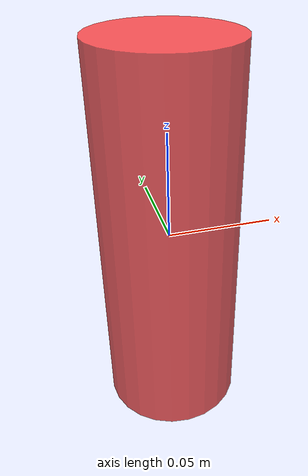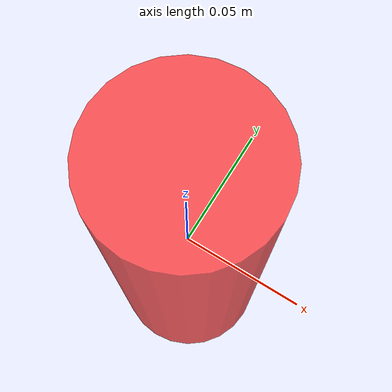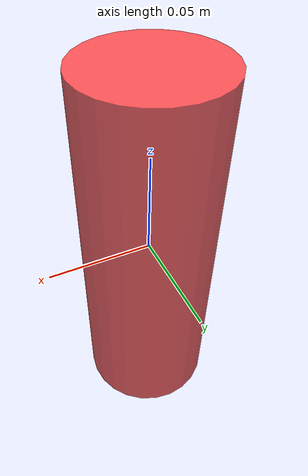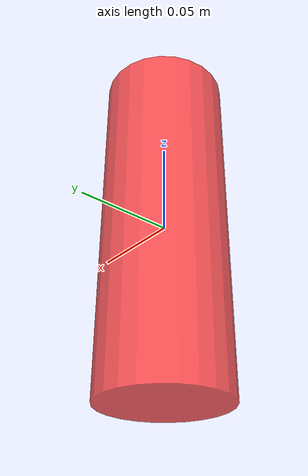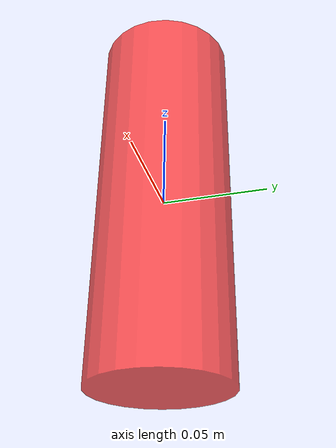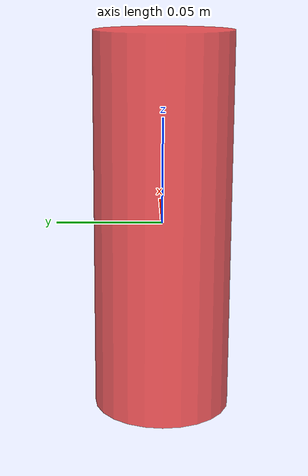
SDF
<?xml version="1.0"?>
<sdf version="1.7">
  <model name="valve">
    <link name="valve">
      <pose>0 0 0 0 0 0</pose>
      <inertial>
        <pose>0 0 0 0 0 0</pose>
        <mass>1</mass>
        <inertia>
          <ixx>0.05</ixx>
          <ixy>0</ixy>
          <ixz>0</ixz>
          <iyy>0.05</iyy>
          <iyz>0</iyz>
          <izz>0.05</izz>
        </inertia>
      </inertial>
      <visual name="visual">
        <pose>0 0 0 0 0 0</pose>
        <geometry>
          <cylinder>
            <length>0.18</length>
  	    <radius>0.0325</radius>
          </cylinder>
        </geometry>
        <material>
          <diffuse>1 0.2 0.2 0.8</diffuse>
        </material>
      </visual>
      <collision name="collision">
        <pose>0 0 0 0 0 0</pose>
        <geometry>
          <cylinder>
            <length>0.18</length>
  	    <radius>0.0325</radius>
          </cylinder>
        </geometry>
        <drake:proximity_properties>
          <drake:point_contact_stiffness>1</drake:point_contact_stiffness>
          <drake:compliant_hydroelastic/>
          <drake:hydroelastic_modulus>2e7</drake:hydroelastic_modulus>
          <drake:mesh_resolution_hint>0.01</drake:mesh_resolution_hint>
	  <drake:hunt_crossley_dissipation>30</drake:hunt_crossley_dissipation>
          <drake:mu_dynamic>0.6</drake:mu_dynamic>
          <drake:mu_static>0.6</drake:mu_static>
        </drake:proximity_properties>
      </collision>
    </link>

    <frame name="valve_bottom">
	<pose relative_to="valve">0 0 -0.09 0 0 0</pose>
    </frame>

  </model>
</sdf>
